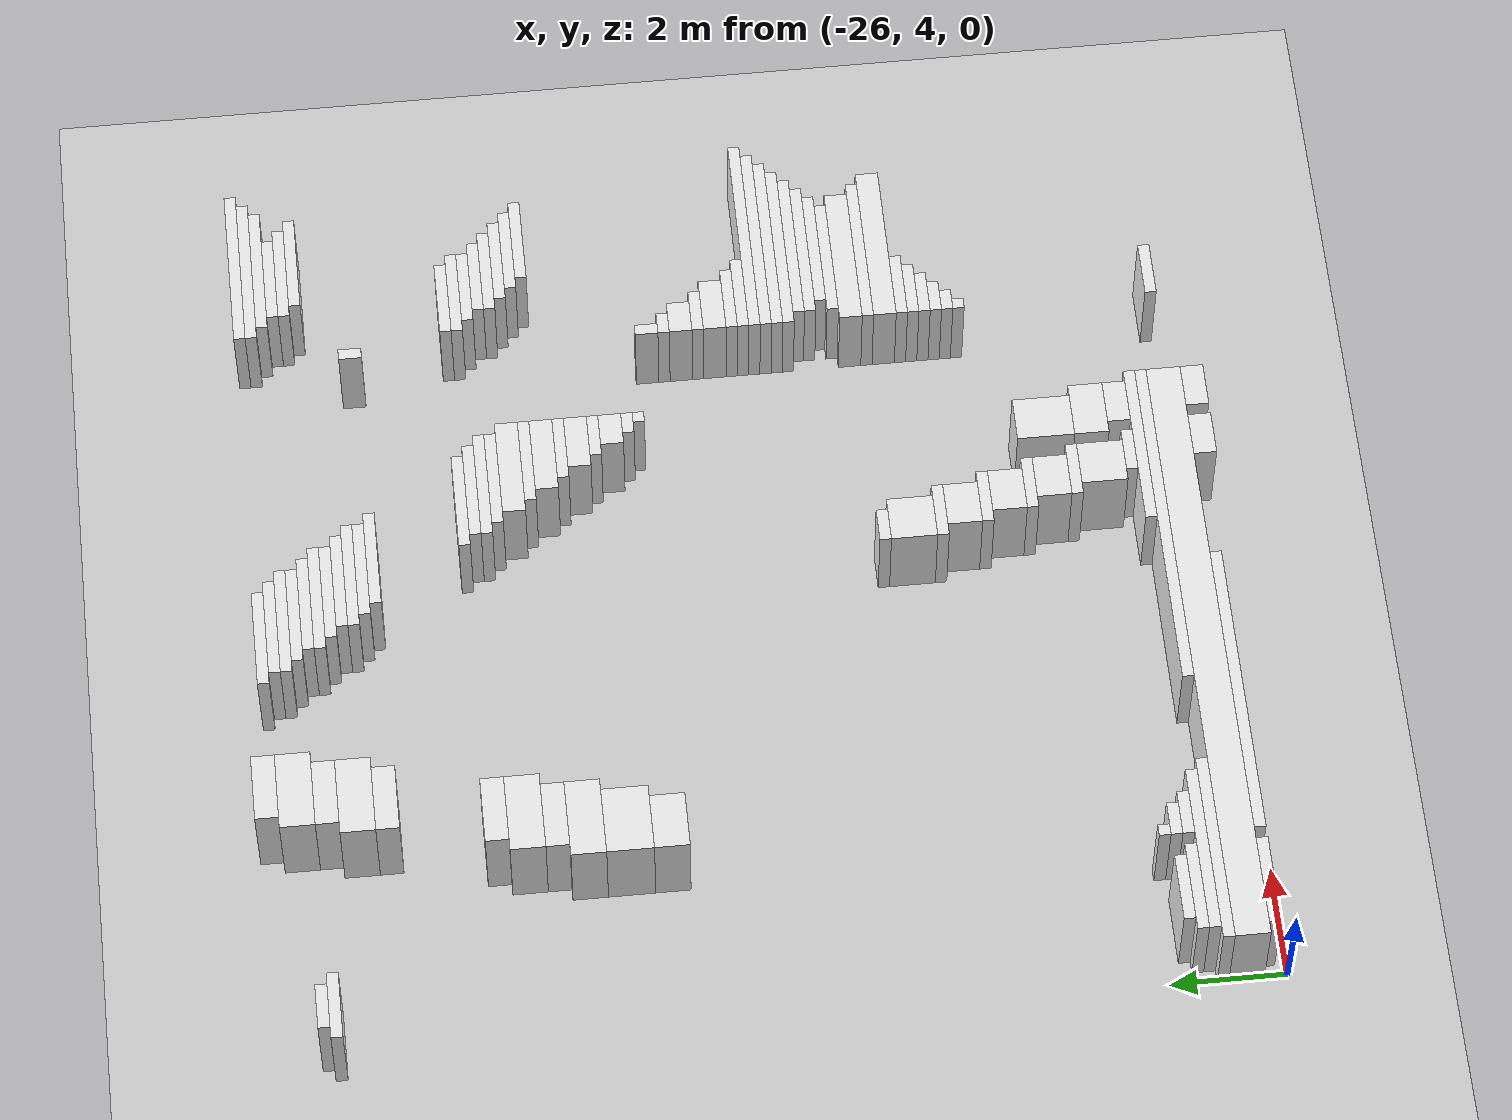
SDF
<sdf version="1.7">
 <world name="default">
  <model name="ground_plane">
   <static>1</static>
   <link name="link">
    <collision name="collision">
     <geometry><plane><normal>0 0 1</normal><size>120 120</size></plane></geometry>
    </collision>
    <visual name="visual">
     <geometry><plane><normal>0 0 1</normal><size>120 120</size></plane></geometry>
     <material>
      <script><uri>file://media/materials/scripts/gazebo.material</uri><name>Gazebo/Grey</name></script>
     </material>
    </visual>
   </link>
  </model>
  <model name="random_complex_02_model">
   <static>1</static>
   <link name="obs_1191">
    <pose>-21.6000 20.8000 0.8000 0 0 0</pose>
    <collision name="obs_1191_col"><geometry><box><size>1.2000 0.4000 1.6000</size></box></geometry></collision>
    <visual name="obs_1191_vis">
     <geometry><box><size>1.2000 0.4000 1.6000</size></box></geometry>
     <material>
      <script><uri>file://media/materials/scripts/gazebo.material</uri><name>Gazebo/White</name></script>
     </material>
    </visual>
   </link>
   <link name="obs_1195">
    <pose>-18.7000 20.7000 0.8000 0 0 0</pose>
    <collision name="obs_1195_col"><geometry><box><size>1.8000 0.2000 1.6000</size></box></geometry></collision>
    <visual name="obs_1195_vis">
     <geometry><box><size>1.8000 0.2000 1.6000</size></box></geometry>
     <material>
      <script><uri>file://media/materials/scripts/gazebo.material</uri><name>Gazebo/White</name></script>
     </material>
    </visual>
   </link>
   <link name="obs_1196">
    <pose>-11.1000 20.7000 0.8000 0 0 0</pose>
    <collision name="obs_1196_col"><geometry><box><size>3.0000 0.2000 1.6000</size></box></geometry></collision>
    <visual name="obs_1196_vis">
     <geometry><box><size>3.0000 0.2000 1.6000</size></box></geometry>
     <material>
      <script><uri>file://media/materials/scripts/gazebo.material</uri><name>Gazebo/White</name></script>
     </material>
    </visual>
   </link>
   <link name="obs_1203">
    <pose>-18.5000 20.5000 0.8000 0 0 0</pose>
    <collision name="obs_1203_col"><geometry><box><size>1.8000 0.2000 1.6000</size></box></geometry></collision>
    <visual name="obs_1203_vis">
     <geometry><box><size>1.8000 0.2000 1.6000</size></box></geometry>
     <material>
      <script><uri>file://media/materials/scripts/gazebo.material</uri><name>Gazebo/White</name></script>
     </material>
    </visual>
   </link>
   <link name="obs_1204">
    <pose>-11.2000 20.5000 0.8000 0 0 0</pose>
    <collision name="obs_1204_col"><geometry><box><size>2.8000 0.2000 1.6000</size></box></geometry></collision>
    <visual name="obs_1204_vis">
     <geometry><box><size>2.8000 0.2000 1.6000</size></box></geometry>
     <material>
      <script><uri>file://media/materials/scripts/gazebo.material</uri><name>Gazebo/White</name></script>
     </material>
    </visual>
   </link>
   <link name="obs_1214">
    <pose>-18.4000 20.3000 0.8000 0 0 0</pose>
    <collision name="obs_1214_col"><geometry><box><size>2.0000 0.2000 1.6000</size></box></geometry></collision>
    <visual name="obs_1214_vis">
     <geometry><box><size>2.0000 0.2000 1.6000</size></box></geometry>
     <material>
      <script><uri>file://media/materials/scripts/gazebo.material</uri><name>Gazebo/White</name></script>
     </material>
    </visual>
   </link>
   <link name="obs_1215">
    <pose>-11.2000 20.3000 0.8000 0 0 0</pose>
    <collision name="obs_1215_col"><geometry><box><size>2.4000 0.2000 1.6000</size></box></geometry></collision>
    <visual name="obs_1215_vis">
     <geometry><box><size>2.4000 0.2000 1.6000</size></box></geometry>
     <material>
      <script><uri>file://media/materials/scripts/gazebo.material</uri><name>Gazebo/White</name></script>
     </material>
    </visual>
   </link>
   <link name="obs_1218">
    <pose>-21.7000 20.3000 0.8000 0 0 0</pose>
    <collision name="obs_1218_col"><geometry><box><size>1.4000 0.6000 1.6000</size></box></geometry></collision>
    <visual name="obs_1218_vis">
     <geometry><box><size>1.4000 0.6000 1.6000</size></box></geometry>
     <material>
      <script><uri>file://media/materials/scripts/gazebo.material</uri><name>Gazebo/White</name></script>
     </material>
    </visual>
   </link>
   <link name="obs_1221">
    <pose>-25.8000 20.1000 0.8000 0 0 0</pose>
    <collision name="obs_1221_col"><geometry><box><size>0.8000 0.2000 1.6000</size></box></geometry></collision>
    <visual name="obs_1221_vis">
     <geometry><box><size>0.8000 0.2000 1.6000</size></box></geometry>
     <material>
      <script><uri>file://media/materials/scripts/gazebo.material</uri><name>Gazebo/White</name></script>
     </material>
    </visual>
   </link>
   <link name="obs_1222">
    <pose>-18.3000 20.1000 0.8000 0 0 0</pose>
    <collision name="obs_1222_col"><geometry><box><size>1.8000 0.2000 1.6000</size></box></geometry></collision>
    <visual name="obs_1222_vis">
     <geometry><box><size>1.8000 0.2000 1.6000</size></box></geometry>
     <material>
      <script><uri>file://media/materials/scripts/gazebo.material</uri><name>Gazebo/White</name></script>
     </material>
    </visual>
   </link>
   <link name="obs_1223">
    <pose>-11.4000 20.1000 0.8000 0 0 0</pose>
    <collision name="obs_1223_col"><geometry><box><size>1.6000 0.2000 1.6000</size></box></geometry></collision>
    <visual name="obs_1223_vis">
     <geometry><box><size>1.6000 0.2000 1.6000</size></box></geometry>
     <material>
      <script><uri>file://media/materials/scripts/gazebo.material</uri><name>Gazebo/White</name></script>
     </material>
    </visual>
   </link>
   <link name="obs_1228">
    <pose>-25.8000 19.9000 0.8000 0 0 0</pose>
    <collision name="obs_1228_col"><geometry><box><size>1.2000 0.2000 1.6000</size></box></geometry></collision>
    <visual name="obs_1228_vis">
     <geometry><box><size>1.2000 0.2000 1.6000</size></box></geometry>
     <material>
      <script><uri>file://media/materials/scripts/gazebo.material</uri><name>Gazebo/White</name></script>
     </material>
    </visual>
   </link>
   <link name="obs_1229">
    <pose>-18.1000 19.9000 0.8000 0 0 0</pose>
    <collision name="obs_1229_col"><geometry><box><size>1.8000 0.2000 1.6000</size></box></geometry></collision>
    <visual name="obs_1229_vis">
     <geometry><box><size>1.8000 0.2000 1.6000</size></box></geometry>
     <material>
      <script><uri>file://media/materials/scripts/gazebo.material</uri><name>Gazebo/White</name></script>
     </material>
    </visual>
   </link>
   <link name="obs_1230">
    <pose>-11.3000 19.9000 0.8000 0 0 0</pose>
    <collision name="obs_1230_col"><geometry><box><size>1.8000 0.2000 1.6000</size></box></geometry></collision>
    <visual name="obs_1230_vis">
     <geometry><box><size>1.8000 0.2000 1.6000</size></box></geometry>
     <material>
      <script><uri>file://media/materials/scripts/gazebo.material</uri><name>Gazebo/White</name></script>
     </material>
    </visual>
   </link>
   <link name="obs_1233">
    <pose>-21.8000 19.8000 0.8000 0 0 0</pose>
    <collision name="obs_1233_col"><geometry><box><size>1.2000 0.4000 1.6000</size></box></geometry></collision>
    <visual name="obs_1233_vis">
     <geometry><box><size>1.2000 0.4000 1.6000</size></box></geometry>
     <material>
      <script><uri>file://media/materials/scripts/gazebo.material</uri><name>Gazebo/White</name></script>
     </material>
    </visual>
   </link>
   <link name="obs_1234">
    <pose>-18.0000 19.7000 0.8000 0 0 0</pose>
    <collision name="obs_1234_col"><geometry><box><size>2.0000 0.2000 1.6000</size></box></geometry></collision>
    <visual name="obs_1234_vis">
     <geometry><box><size>2.0000 0.2000 1.6000</size></box></geometry>
     <material>
      <script><uri>file://media/materials/scripts/gazebo.material</uri><name>Gazebo/White</name></script>
     </material>
    </visual>
   </link>
   <link name="obs_1235">
    <pose>-11.1000 19.7000 0.8000 0 0 0</pose>
    <collision name="obs_1235_col"><geometry><box><size>1.8000 0.2000 1.6000</size></box></geometry></collision>
    <visual name="obs_1235_vis">
     <geometry><box><size>1.8000 0.2000 1.6000</size></box></geometry>
     <material>
      <script><uri>file://media/materials/scripts/gazebo.material</uri><name>Gazebo/White</name></script>
     </material>
    </visual>
   </link>
   <link name="obs_1239">
    <pose>-17.9000 19.5000 0.8000 0 0 0</pose>
    <collision name="obs_1239_col"><geometry><box><size>1.8000 0.2000 1.6000</size></box></geometry></collision>
    <visual name="obs_1239_vis">
     <geometry><box><size>1.8000 0.2000 1.6000</size></box></geometry>
     <material>
      <script><uri>file://media/materials/scripts/gazebo.material</uri><name>Gazebo/White</name></script>
     </material>
    </visual>
   </link>
   <link name="obs_1247">
    <pose>-17.7000 19.3000 0.8000 0 0 0</pose>
    <collision name="obs_1247_col"><geometry><box><size>1.8000 0.2000 1.6000</size></box></geometry></collision>
    <visual name="obs_1247_vis">
     <geometry><box><size>1.8000 0.2000 1.6000</size></box></geometry>
     <material>
      <script><uri>file://media/materials/scripts/gazebo.material</uri><name>Gazebo/White</name></script>
     </material>
    </visual>
   </link>
   <link name="obs_1252">
    <pose>-21.9000 19.3000 0.8000 0 0 0</pose>
    <collision name="obs_1252_col"><geometry><box><size>1.4000 0.6000 1.6000</size></box></geometry></collision>
    <visual name="obs_1252_vis">
     <geometry><box><size>1.4000 0.6000 1.6000</size></box></geometry>
     <material>
      <script><uri>file://media/materials/scripts/gazebo.material</uri><name>Gazebo/White</name></script>
     </material>
    </visual>
   </link>
   <link name="obs_1256">
    <pose>-17.6000 19.1000 0.8000 0 0 0</pose>
    <collision name="obs_1256_col"><geometry><box><size>2.0000 0.2000 1.6000</size></box></geometry></collision>
    <visual name="obs_1256_vis">
     <geometry><box><size>2.0000 0.2000 1.6000</size></box></geometry>
     <material>
      <script><uri>file://media/materials/scripts/gazebo.material</uri><name>Gazebo/White</name></script>
     </material>
    </visual>
   </link>
   <link name="obs_1265">
    <pose>-17.5000 18.9000 0.8000 0 0 0</pose>
    <collision name="obs_1265_col"><geometry><box><size>1.8000 0.2000 1.6000</size></box></geometry></collision>
    <visual name="obs_1265_vis">
     <geometry><box><size>1.8000 0.2000 1.6000</size></box></geometry>
     <material>
      <script><uri>file://media/materials/scripts/gazebo.material</uri><name>Gazebo/White</name></script>
     </material>
    </visual>
   </link>
   <link name="obs_1272">
    <pose>-22.0000 18.8000 0.8000 0 0 0</pose>
    <collision name="obs_1272_col"><geometry><box><size>1.2000 0.4000 1.6000</size></box></geometry></collision>
    <visual name="obs_1272_vis">
     <geometry><box><size>1.2000 0.4000 1.6000</size></box></geometry>
     <material>
      <script><uri>file://media/materials/scripts/gazebo.material</uri><name>Gazebo/White</name></script>
     </material>
    </visual>
   </link>
   <link name="obs_1273">
    <pose>-13.1000 18.8000 0.8000 0 0 0</pose>
    <collision name="obs_1273_col"><geometry><box><size>0.2000 0.4000 1.6000</size></box></geometry></collision>
    <visual name="obs_1273_vis">
     <geometry><box><size>0.2000 0.4000 1.6000</size></box></geometry>
     <material>
      <script><uri>file://media/materials/scripts/gazebo.material</uri><name>Gazebo/White</name></script>
     </material>
    </visual>
   </link>
   <link name="obs_1280">
    <pose>-17.3000 18.7000 0.8000 0 0 0</pose>
    <collision name="obs_1280_col"><geometry><box><size>1.8000 0.2000 1.6000</size></box></geometry></collision>
    <visual name="obs_1280_vis">
     <geometry><box><size>1.8000 0.2000 1.6000</size></box></geometry>
     <material>
      <script><uri>file://media/materials/scripts/gazebo.material</uri><name>Gazebo/White</name></script>
     </material>
    </visual>
   </link>
   <link name="obs_1312">
    <pose>-16.3000 17.1000 0.8000 0 0 0</pose>
    <collision name="obs_1312_col"><geometry><box><size>1.8000 0.2000 1.6000</size></box></geometry></collision>
    <visual name="obs_1312_vis">
     <geometry><box><size>1.8000 0.2000 1.6000</size></box></geometry>
     <material>
      <script><uri>file://media/materials/scripts/gazebo.material</uri><name>Gazebo/White</name></script>
     </material>
    </visual>
   </link>
   <link name="obs_1313">
    <pose>-12.1000 17.1000 0.8000 0 0 0</pose>
    <collision name="obs_1313_col"><geometry><box><size>1.4000 0.2000 1.6000</size></box></geometry></collision>
    <visual name="obs_1313_vis">
     <geometry><box><size>1.4000 0.2000 1.6000</size></box></geometry>
     <material>
      <script><uri>file://media/materials/scripts/gazebo.material</uri><name>Gazebo/White</name></script>
     </material>
    </visual>
   </link>
   <link name="obs_1318">
    <pose>-22.4000 17.0000 0.8000 0 0 0</pose>
    <collision name="obs_1318_col"><geometry><box><size>1.2000 0.4000 1.6000</size></box></geometry></collision>
    <visual name="obs_1318_vis">
     <geometry><box><size>1.2000 0.4000 1.6000</size></box></geometry>
     <material>
      <script><uri>file://media/materials/scripts/gazebo.material</uri><name>Gazebo/White</name></script>
     </material>
    </visual>
   </link>
   <link name="obs_1320">
    <pose>-16.1000 16.9000 0.8000 0 0 0</pose>
    <collision name="obs_1320_col"><geometry><box><size>1.8000 0.2000 1.6000</size></box></geometry></collision>
    <visual name="obs_1320_vis">
     <geometry><box><size>1.8000 0.2000 1.6000</size></box></geometry>
     <material>
      <script><uri>file://media/materials/scripts/gazebo.material</uri><name>Gazebo/White</name></script>
     </material>
    </visual>
   </link>
   <link name="obs_1321">
    <pose>-12.0000 16.9000 0.8000 0 0 0</pose>
    <collision name="obs_1321_col"><geometry><box><size>1.6000 0.2000 1.6000</size></box></geometry></collision>
    <visual name="obs_1321_vis">
     <geometry><box><size>1.6000 0.2000 1.6000</size></box></geometry>
     <material>
      <script><uri>file://media/materials/scripts/gazebo.material</uri><name>Gazebo/White</name></script>
     </material>
    </visual>
   </link>
   <link name="obs_1327">
    <pose>-16.0000 16.7000 0.8000 0 0 0</pose>
    <collision name="obs_1327_col"><geometry><box><size>2.0000 0.2000 1.6000</size></box></geometry></collision>
    <visual name="obs_1327_vis">
     <geometry><box><size>2.0000 0.2000 1.6000</size></box></geometry>
     <material>
      <script><uri>file://media/materials/scripts/gazebo.material</uri><name>Gazebo/White</name></script>
     </material>
    </visual>
   </link>
   <link name="obs_1328">
    <pose>-11.9000 16.7000 0.8000 0 0 0</pose>
    <collision name="obs_1328_col"><geometry><box><size>1.4000 0.2000 1.6000</size></box></geometry></collision>
    <visual name="obs_1328_vis">
     <geometry><box><size>1.4000 0.2000 1.6000</size></box></geometry>
     <material>
      <script><uri>file://media/materials/scripts/gazebo.material</uri><name>Gazebo/White</name></script>
     </material>
    </visual>
   </link>
   <link name="obs_1334">
    <pose>-15.9000 16.5000 0.8000 0 0 0</pose>
    <collision name="obs_1334_col"><geometry><box><size>1.8000 0.2000 1.6000</size></box></geometry></collision>
    <visual name="obs_1334_vis">
     <geometry><box><size>1.8000 0.2000 1.6000</size></box></geometry>
     <material>
      <script><uri>file://media/materials/scripts/gazebo.material</uri><name>Gazebo/White</name></script>
     </material>
    </visual>
   </link>
   <link name="obs_1335">
    <pose>-11.7000 16.5000 0.8000 0 0 0</pose>
    <collision name="obs_1335_col"><geometry><box><size>1.4000 0.2000 1.6000</size></box></geometry></collision>
    <visual name="obs_1335_vis">
     <geometry><box><size>1.4000 0.2000 1.6000</size></box></geometry>
     <material>
      <script><uri>file://media/materials/scripts/gazebo.material</uri><name>Gazebo/White</name></script>
     </material>
    </visual>
   </link>
   <link name="obs_1338">
    <pose>-22.5000 16.5000 0.8000 0 0 0</pose>
    <collision name="obs_1338_col"><geometry><box><size>1.4000 0.6000 1.6000</size></box></geometry></collision>
    <visual name="obs_1338_vis">
     <geometry><box><size>1.4000 0.6000 1.6000</size></box></geometry>
     <material>
      <script><uri>file://media/materials/scripts/gazebo.material</uri><name>Gazebo/White</name></script>
     </material>
    </visual>
   </link>
   <link name="obs_1341">
    <pose>-11.6000 16.3000 0.8000 0 0 0</pose>
    <collision name="obs_1341_col"><geometry><box><size>1.6000 0.2000 1.6000</size></box></geometry></collision>
    <visual name="obs_1341_vis">
     <geometry><box><size>1.6000 0.2000 1.6000</size></box></geometry>
     <material>
      <script><uri>file://media/materials/scripts/gazebo.material</uri><name>Gazebo/White</name></script>
     </material>
    </visual>
   </link>
   <link name="obs_1345">
    <pose>-15.7000 16.2000 0.8000 0 0 0</pose>
    <collision name="obs_1345_col"><geometry><box><size>1.8000 0.4000 1.6000</size></box></geometry></collision>
    <visual name="obs_1345_vis">
     <geometry><box><size>1.8000 0.4000 1.6000</size></box></geometry>
     <material>
      <script><uri>file://media/materials/scripts/gazebo.material</uri><name>Gazebo/White</name></script>
     </material>
    </visual>
   </link>
   <link name="obs_1348">
    <pose>-11.4000 16.1000 0.8000 0 0 0</pose>
    <collision name="obs_1348_col"><geometry><box><size>1.6000 0.2000 1.6000</size></box></geometry></collision>
    <visual name="obs_1348_vis">
     <geometry><box><size>1.6000 0.2000 1.6000</size></box></geometry>
     <material>
      <script><uri>file://media/materials/scripts/gazebo.material</uri><name>Gazebo/White</name></script>
     </material>
    </visual>
   </link>
   <link name="obs_1350">
    <pose>-22.6000 16.0000 0.8000 0 0 0</pose>
    <collision name="obs_1350_col"><geometry><box><size>1.2000 0.4000 1.6000</size></box></geometry></collision>
    <visual name="obs_1350_vis">
     <geometry><box><size>1.2000 0.4000 1.6000</size></box></geometry>
     <material>
      <script><uri>file://media/materials/scripts/gazebo.material</uri><name>Gazebo/White</name></script>
     </material>
    </visual>
   </link>
   <link name="obs_1353">
    <pose>-15.6000 15.9000 0.8000 0 0 0</pose>
    <collision name="obs_1353_col"><geometry><box><size>1.6000 0.2000 1.6000</size></box></geometry></collision>
    <visual name="obs_1353_vis">
     <geometry><box><size>1.6000 0.2000 1.6000</size></box></geometry>
     <material>
      <script><uri>file://media/materials/scripts/gazebo.material</uri><name>Gazebo/White</name></script>
     </material>
    </visual>
   </link>
   <link name="obs_1354">
    <pose>-11.2000 15.9000 0.8000 0 0 0</pose>
    <collision name="obs_1354_col"><geometry><box><size>1.6000 0.2000 1.6000</size></box></geometry></collision>
    <visual name="obs_1354_vis">
     <geometry><box><size>1.6000 0.2000 1.6000</size></box></geometry>
     <material>
      <script><uri>file://media/materials/scripts/gazebo.material</uri><name>Gazebo/White</name></script>
     </material>
    </visual>
   </link>
   <link name="obs_1359">
    <pose>-11.0000 15.7000 0.8000 0 0 0</pose>
    <collision name="obs_1359_col"><geometry><box><size>1.6000 0.2000 1.6000</size></box></geometry></collision>
    <visual name="obs_1359_vis">
     <geometry><box><size>1.6000 0.2000 1.6000</size></box></geometry>
     <material>
      <script><uri>file://media/materials/scripts/gazebo.material</uri><name>Gazebo/White</name></script>
     </material>
    </visual>
   </link>
   <link name="obs_1362">
    <pose>-15.5000 15.6000 0.8000 0 0 0</pose>
    <collision name="obs_1362_col"><geometry><box><size>1.4000 0.4000 1.6000</size></box></geometry></collision>
    <visual name="obs_1362_vis">
     <geometry><box><size>1.4000 0.4000 1.6000</size></box></geometry>
     <material>
      <script><uri>file://media/materials/scripts/gazebo.material</uri><name>Gazebo/White</name></script>
     </material>
    </visual>
   </link>
   <link name="obs_1367">
    <pose>-22.7000 15.5000 0.8000 0 0 0</pose>
    <collision name="obs_1367_col"><geometry><box><size>1.4000 0.6000 1.6000</size></box></geometry></collision>
    <visual name="obs_1367_vis">
     <geometry><box><size>1.4000 0.6000 1.6000</size></box></geometry>
     <material>
      <script><uri>file://media/materials/scripts/gazebo.material</uri><name>Gazebo/White</name></script>
     </material>
    </visual>
   </link>
   <link name="obs_1371">
    <pose>-15.4000 15.3000 0.8000 0 0 0</pose>
    <collision name="obs_1371_col"><geometry><box><size>1.2000 0.2000 1.6000</size></box></geometry></collision>
    <visual name="obs_1371_vis">
     <geometry><box><size>1.2000 0.2000 1.6000</size></box></geometry>
     <material>
      <script><uri>file://media/materials/scripts/gazebo.material</uri><name>Gazebo/White</name></script>
     </material>
    </visual>
   </link>
   <link name="obs_1381">
    <pose>-15.3000 15.0000 0.8000 0 0 0</pose>
    <collision name="obs_1381_col"><geometry><box><size>1.0000 0.4000 1.6000</size></box></geometry></collision>
    <visual name="obs_1381_vis">
     <geometry><box><size>1.0000 0.4000 1.6000</size></box></geometry>
     <material>
      <script><uri>file://media/materials/scripts/gazebo.material</uri><name>Gazebo/White</name></script>
     </material>
    </visual>
   </link>
   <link name="obs_1389">
    <pose>-15.2000 14.7000 0.8000 0 0 0</pose>
    <collision name="obs_1389_col"><geometry><box><size>0.8000 0.2000 1.6000</size></box></geometry></collision>
    <visual name="obs_1389_vis">
     <geometry><box><size>0.8000 0.2000 1.6000</size></box></geometry>
     <material>
      <script><uri>file://media/materials/scripts/gazebo.material</uri><name>Gazebo/White</name></script>
     </material>
    </visual>
   </link>
   <link name="obs_1393">
    <pose>-22.8000 14.8000 0.8000 0 0 0</pose>
    <collision name="obs_1393_col"><geometry><box><size>1.2000 0.8000 1.6000</size></box></geometry></collision>
    <visual name="obs_1393_vis">
     <geometry><box><size>1.2000 0.8000 1.6000</size></box></geometry>
     <material>
      <script><uri>file://media/materials/scripts/gazebo.material</uri><name>Gazebo/White</name></script>
     </material>
    </visual>
   </link>
   <link name="obs_1401">
    <pose>-15.1000 14.4000 0.8000 0 0 0</pose>
    <collision name="obs_1401_col"><geometry><box><size>0.6000 0.4000 1.6000</size></box></geometry></collision>
    <visual name="obs_1401_vis">
     <geometry><box><size>0.6000 0.4000 1.6000</size></box></geometry>
     <material>
      <script><uri>file://media/materials/scripts/gazebo.material</uri><name>Gazebo/White</name></script>
     </material>
    </visual>
   </link>
   <link name="obs_1409">
    <pose>-15.0000 14.1000 0.8000 0 0 0</pose>
    <collision name="obs_1409_col"><geometry><box><size>0.4000 0.2000 1.6000</size></box></geometry></collision>
    <visual name="obs_1409_vis">
     <geometry><box><size>0.4000 0.2000 1.6000</size></box></geometry>
     <material>
      <script><uri>file://media/materials/scripts/gazebo.material</uri><name>Gazebo/White</name></script>
     </material>
    </visual>
   </link>
   <link name="obs_1413">
    <pose>-22.9000 14.1000 0.8000 0 0 0</pose>
    <collision name="obs_1413_col"><geometry><box><size>1.0000 0.6000 1.6000</size></box></geometry></collision>
    <visual name="obs_1413_vis">
     <geometry><box><size>1.0000 0.6000 1.6000</size></box></geometry>
     <material>
      <script><uri>file://media/materials/scripts/gazebo.material</uri><name>Gazebo/White</name></script>
     </material>
    </visual>
   </link>
   <link name="obs_1418">
    <pose>-14.9000 13.9000 0.8000 0 0 0</pose>
    <collision name="obs_1418_col"><geometry><box><size>0.2000 0.2000 1.6000</size></box></geometry></collision>
    <visual name="obs_1418_vis">
     <geometry><box><size>0.2000 0.2000 1.6000</size></box></geometry>
     <material>
      <script><uri>file://media/materials/scripts/gazebo.material</uri><name>Gazebo/White</name></script>
     </material>
    </visual>
   </link>
   <link name="obs_1428">
    <pose>-13.1000 13.6000 0.8000 0 0 0</pose>
    <collision name="obs_1428_col"><geometry><box><size>0.2000 0.4000 1.6000</size></box></geometry></collision>
    <visual name="obs_1428_vis">
     <geometry><box><size>0.2000 0.4000 1.6000</size></box></geometry>
     <material>
      <script><uri>file://media/materials/scripts/gazebo.material</uri><name>Gazebo/White</name></script>
     </material>
    </visual>
   </link>
   <link name="obs_1436">
    <pose>-13.0000 13.3000 0.8000 0 0 0</pose>
    <collision name="obs_1436_col"><geometry><box><size>0.4000 0.2000 1.6000</size></box></geometry></collision>
    <visual name="obs_1436_vis">
     <geometry><box><size>0.4000 0.2000 1.6000</size></box></geometry>
     <material>
      <script><uri>file://media/materials/scripts/gazebo.material</uri><name>Gazebo/White</name></script>
     </material>
    </visual>
   </link>
   <link name="obs_1444">
    <pose>-12.9000 13.0000 0.8000 0 0 0</pose>
    <collision name="obs_1444_col"><geometry><box><size>0.6000 0.4000 1.6000</size></box></geometry></collision>
    <visual name="obs_1444_vis">
     <geometry><box><size>0.6000 0.4000 1.6000</size></box></geometry>
     <material>
      <script><uri>file://media/materials/scripts/gazebo.material</uri><name>Gazebo/White</name></script>
     </material>
    </visual>
   </link>
   <link name="obs_1449">
    <pose>-12.8000 12.7000 0.8000 0 0 0</pose>
    <collision name="obs_1449_col"><geometry><box><size>0.8000 0.2000 1.6000</size></box></geometry></collision>
    <visual name="obs_1449_vis">
     <geometry><box><size>0.8000 0.2000 1.6000</size></box></geometry>
     <material>
      <script><uri>file://media/materials/scripts/gazebo.material</uri><name>Gazebo/White</name></script>
     </material>
    </visual>
   </link>
   <link name="obs_1459">
    <pose>-12.7000 12.4000 0.8000 0 0 0</pose>
    <collision name="obs_1459_col"><geometry><box><size>1.0000 0.4000 1.6000</size></box></geometry></collision>
    <visual name="obs_1459_vis">
     <geometry><box><size>1.0000 0.4000 1.6000</size></box></geometry>
     <material>
      <script><uri>file://media/materials/scripts/gazebo.material</uri><name>Gazebo/White</name></script>
     </material>
    </visual>
   </link>
   <link name="obs_1469">
    <pose>-12.6000 12.1000 0.8000 0 0 0</pose>
    <collision name="obs_1469_col"><geometry><box><size>1.2000 0.2000 1.6000</size></box></geometry></collision>
    <visual name="obs_1469_vis">
     <geometry><box><size>1.2000 0.2000 1.6000</size></box></geometry>
     <material>
      <script><uri>file://media/materials/scripts/gazebo.material</uri><name>Gazebo/White</name></script>
     </material>
    </visual>
   </link>
   <link name="obs_1479">
    <pose>-12.5000 11.9000 0.8000 0 0 0</pose>
    <collision name="obs_1479_col"><geometry><box><size>1.4000 0.2000 1.6000</size></box></geometry></collision>
    <visual name="obs_1479_vis">
     <geometry><box><size>1.4000 0.2000 1.6000</size></box></geometry>
     <material>
      <script><uri>file://media/materials/scripts/gazebo.material</uri><name>Gazebo/White</name></script>
     </material>
    </visual>
   </link>
   <link name="obs_1487">
    <pose>-11.3000 11.7000 0.8000 0 0 0</pose>
    <collision name="obs_1487_col"><geometry><box><size>3.8000 0.2000 1.6000</size></box></geometry></collision>
    <visual name="obs_1487_vis">
     <geometry><box><size>3.8000 0.2000 1.6000</size></box></geometry>
     <material>
      <script><uri>file://media/materials/scripts/gazebo.material</uri><name>Gazebo/White</name></script>
     </material>
    </visual>
   </link>
   <link name="obs_1494">
    <pose>-11.4000 11.5000 0.8000 0 0 0</pose>
    <collision name="obs_1494_col"><geometry><box><size>3.6000 0.2000 1.6000</size></box></geometry></collision>
    <visual name="obs_1494_vis">
     <geometry><box><size>3.6000 0.2000 1.6000</size></box></geometry>
     <material>
      <script><uri>file://media/materials/scripts/gazebo.material</uri><name>Gazebo/White</name></script>
     </material>
    </visual>
   </link>
   <link name="obs_1497">
    <pose>-11.5000 11.3000 0.8000 0 0 0</pose>
    <collision name="obs_1497_col"><geometry><box><size>3.4000 0.2000 1.6000</size></box></geometry></collision>
    <visual name="obs_1497_vis">
     <geometry><box><size>3.4000 0.2000 1.6000</size></box></geometry>
     <material>
      <script><uri>file://media/materials/scripts/gazebo.material</uri><name>Gazebo/White</name></script>
     </material>
    </visual>
   </link>
   <link name="obs_1504">
    <pose>-11.6000 11.1000 0.8000 0 0 0</pose>
    <collision name="obs_1504_col"><geometry><box><size>3.2000 0.2000 1.6000</size></box></geometry></collision>
    <visual name="obs_1504_vis">
     <geometry><box><size>3.2000 0.2000 1.6000</size></box></geometry>
     <material>
      <script><uri>file://media/materials/scripts/gazebo.material</uri><name>Gazebo/White</name></script>
     </material>
    </visual>
   </link>
   <link name="obs_1508">
    <pose>-11.6000 10.9000 0.8000 0 0 0</pose>
    <collision name="obs_1508_col"><geometry><box><size>2.8000 0.2000 1.6000</size></box></geometry></collision>
    <visual name="obs_1508_vis">
     <geometry><box><size>2.8000 0.2000 1.6000</size></box></geometry>
     <material>
      <script><uri>file://media/materials/scripts/gazebo.material</uri><name>Gazebo/White</name></script>
     </material>
    </visual>
   </link>
   <link name="obs_1512">
    <pose>-11.7000 10.7000 0.8000 0 0 0</pose>
    <collision name="obs_1512_col"><geometry><box><size>2.6000 0.2000 1.6000</size></box></geometry></collision>
    <visual name="obs_1512_vis">
     <geometry><box><size>2.6000 0.2000 1.6000</size></box></geometry>
     <material>
      <script><uri>file://media/materials/scripts/gazebo.material</uri><name>Gazebo/White</name></script>
     </material>
    </visual>
   </link>
   <link name="obs_1518">
    <pose>-11.7000 10.5000 0.8000 0 0 0</pose>
    <collision name="obs_1518_col"><geometry><box><size>2.2000 0.2000 1.6000</size></box></geometry></collision>
    <visual name="obs_1518_vis">
     <geometry><box><size>2.2000 0.2000 1.6000</size></box></geometry>
     <material>
      <script><uri>file://media/materials/scripts/gazebo.material</uri><name>Gazebo/White</name></script>
     </material>
    </visual>
   </link>
   <link name="obs_1526">
    <pose>-11.9000 10.3000 0.8000 0 0 0</pose>
    <collision name="obs_1526_col"><geometry><box><size>2.2000 0.2000 1.6000</size></box></geometry></collision>
    <visual name="obs_1526_vis">
     <geometry><box><size>2.2000 0.2000 1.6000</size></box></geometry>
     <material>
      <script><uri>file://media/materials/scripts/gazebo.material</uri><name>Gazebo/White</name></script>
     </material>
    </visual>
   </link>
   <link name="obs_1540">
    <pose>-11.9000 10.0000 0.8000 0 0 0</pose>
    <collision name="obs_1540_col"><geometry><box><size>2.6000 0.4000 1.6000</size></box></geometry></collision>
    <visual name="obs_1540_vis">
     <geometry><box><size>2.6000 0.4000 1.6000</size></box></geometry>
     <material>
      <script><uri>file://media/materials/scripts/gazebo.material</uri><name>Gazebo/White</name></script>
     </material>
    </visual>
   </link>
   <link name="obs_1542">
    <pose>-17.5000 9.9000 0.8000 0 0 0</pose>
    <collision name="obs_1542_col"><geometry><box><size>0.6000 0.2000 1.6000</size></box></geometry></collision>
    <visual name="obs_1542_vis">
     <geometry><box><size>0.6000 0.2000 1.6000</size></box></geometry>
     <material>
      <script><uri>file://media/materials/scripts/gazebo.material</uri><name>Gazebo/White</name></script>
     </material>
    </visual>
   </link>
   <link name="obs_1552">
    <pose>-11.8000 9.7000 0.8000 0 0 0</pose>
    <collision name="obs_1552_col"><geometry><box><size>2.8000 0.2000 1.6000</size></box></geometry></collision>
    <visual name="obs_1552_vis">
     <geometry><box><size>2.8000 0.2000 1.6000</size></box></geometry>
     <material>
      <script><uri>file://media/materials/scripts/gazebo.material</uri><name>Gazebo/White</name></script>
     </material>
    </visual>
   </link>
   <link name="obs_1567">
    <pose>-11.7000 9.4000 0.8000 0 0 0</pose>
    <collision name="obs_1567_col"><geometry><box><size>3.0000 0.4000 1.6000</size></box></geometry></collision>
    <visual name="obs_1567_vis">
     <geometry><box><size>3.0000 0.4000 1.6000</size></box></geometry>
     <material>
      <script><uri>file://media/materials/scripts/gazebo.material</uri><name>Gazebo/White</name></script>
     </material>
    </visual>
   </link>
   <link name="obs_1574">
    <pose>-17.4000 9.4000 0.8000 0 0 0</pose>
    <collision name="obs_1574_col"><geometry><box><size>0.8000 0.8000 1.6000</size></box></geometry></collision>
    <visual name="obs_1574_vis">
     <geometry><box><size>0.8000 0.8000 1.6000</size></box></geometry>
     <material>
      <script><uri>file://media/materials/scripts/gazebo.material</uri><name>Gazebo/White</name></script>
     </material>
    </visual>
   </link>
   <link name="obs_1579">
    <pose>-12.6000 9.1000 0.8000 0 0 0</pose>
    <collision name="obs_1579_col"><geometry><box><size>1.2000 0.2000 1.6000</size></box></geometry></collision>
    <visual name="obs_1579_vis">
     <geometry><box><size>1.2000 0.2000 1.6000</size></box></geometry>
     <material>
      <script><uri>file://media/materials/scripts/gazebo.material</uri><name>Gazebo/White</name></script>
     </material>
    </visual>
   </link>
   <link name="obs_1588">
    <pose>-17.3000 8.9000 0.8000 0 0 0</pose>
    <collision name="obs_1588_col"><geometry><box><size>1.0000 0.2000 1.6000</size></box></geometry></collision>
    <visual name="obs_1588_vis">
     <geometry><box><size>1.0000 0.2000 1.6000</size></box></geometry>
     <material>
      <script><uri>file://media/materials/scripts/gazebo.material</uri><name>Gazebo/White</name></script>
     </material>
    </visual>
   </link>
   <link name="obs_1589">
    <pose>-12.7000 8.9000 0.8000 0 0 0</pose>
    <collision name="obs_1589_col"><geometry><box><size>1.0000 0.2000 1.6000</size></box></geometry></collision>
    <visual name="obs_1589_vis">
     <geometry><box><size>1.0000 0.2000 1.6000</size></box></geometry>
     <material>
      <script><uri>file://media/materials/scripts/gazebo.material</uri><name>Gazebo/White</name></script>
     </material>
    </visual>
   </link>
   <link name="obs_1599">
    <pose>-12.8000 8.7000 0.8000 0 0 0</pose>
    <collision name="obs_1599_col"><geometry><box><size>0.8000 0.2000 1.6000</size></box></geometry></collision>
    <visual name="obs_1599_vis">
     <geometry><box><size>0.8000 0.2000 1.6000</size></box></geometry>
     <material>
      <script><uri>file://media/materials/scripts/gazebo.material</uri><name>Gazebo/White</name></script>
     </material>
    </visual>
   </link>
   <link name="obs_1609">
    <pose>-12.9000 8.5000 0.8000 0 0 0</pose>
    <collision name="obs_1609_col"><geometry><box><size>0.6000 0.2000 1.6000</size></box></geometry></collision>
    <visual name="obs_1609_vis">
     <geometry><box><size>0.6000 0.2000 1.6000</size></box></geometry>
     <material>
      <script><uri>file://media/materials/scripts/gazebo.material</uri><name>Gazebo/White</name></script>
     </material>
    </visual>
   </link>
   <link name="obs_1612">
    <pose>-17.2000 8.5000 0.8000 0 0 0</pose>
    <collision name="obs_1612_col"><geometry><box><size>0.8000 0.6000 1.6000</size></box></geometry></collision>
    <visual name="obs_1612_vis">
     <geometry><box><size>0.8000 0.6000 1.6000</size></box></geometry>
     <material>
      <script><uri>file://media/materials/scripts/gazebo.material</uri><name>Gazebo/White</name></script>
     </material>
    </visual>
   </link>
   <link name="obs_1615">
    <pose>-13.0000 8.3000 0.8000 0 0 0</pose>
    <collision name="obs_1615_col"><geometry><box><size>0.4000 0.2000 1.6000</size></box></geometry></collision>
    <visual name="obs_1615_vis">
     <geometry><box><size>0.4000 0.2000 1.6000</size></box></geometry>
     <material>
      <script><uri>file://media/materials/scripts/gazebo.material</uri><name>Gazebo/White</name></script>
     </material>
    </visual>
   </link>
   <link name="obs_1624">
    <pose>-17.1000 8.1000 0.8000 0 0 0</pose>
    <collision name="obs_1624_col"><geometry><box><size>1.0000 0.2000 1.6000</size></box></geometry></collision>
    <visual name="obs_1624_vis">
     <geometry><box><size>1.0000 0.2000 1.6000</size></box></geometry>
     <material>
      <script><uri>file://media/materials/scripts/gazebo.material</uri><name>Gazebo/White</name></script>
     </material>
    </visual>
   </link>
   <link name="obs_1625">
    <pose>-13.1000 8.1000 0.8000 0 0 0</pose>
    <collision name="obs_1625_col"><geometry><box><size>0.2000 0.2000 1.6000</size></box></geometry></collision>
    <visual name="obs_1625_vis">
     <geometry><box><size>0.2000 0.2000 1.6000</size></box></geometry>
     <material>
      <script><uri>file://media/materials/scripts/gazebo.material</uri><name>Gazebo/White</name></script>
     </material>
    </visual>
   </link>
   <link name="obs_1645">
    <pose>-17.0000 7.7000 0.8000 0 0 0</pose>
    <collision name="obs_1645_col"><geometry><box><size>0.8000 0.6000 1.6000</size></box></geometry></collision>
    <visual name="obs_1645_vis">
     <geometry><box><size>0.8000 0.6000 1.6000</size></box></geometry>
     <material>
      <script><uri>file://media/materials/scripts/gazebo.material</uri><name>Gazebo/White</name></script>
     </material>
    </visual>
   </link>
   <link name="obs_1652">
    <pose>-16.9000 7.3000 0.8000 0 0 0</pose>
    <collision name="obs_1652_col"><geometry><box><size>1.0000 0.2000 1.6000</size></box></geometry></collision>
    <visual name="obs_1652_vis">
     <geometry><box><size>1.0000 0.2000 1.6000</size></box></geometry>
     <material>
      <script><uri>file://media/materials/scripts/gazebo.material</uri><name>Gazebo/White</name></script>
     </material>
    </visual>
   </link>
   <link name="obs_1667">
    <pose>-16.8000 6.9000 0.8000 0 0 0</pose>
    <collision name="obs_1667_col"><geometry><box><size>0.8000 0.6000 1.6000</size></box></geometry></collision>
    <visual name="obs_1667_vis">
     <geometry><box><size>0.8000 0.6000 1.6000</size></box></geometry>
     <material>
      <script><uri>file://media/materials/scripts/gazebo.material</uri><name>Gazebo/White</name></script>
     </material>
    </visual>
   </link>
   <link name="obs_1675">
    <pose>-15.6000 6.9000 0.8000 0 0 0</pose>
    <collision name="obs_1675_col"><geometry><box><size>0.8000 1.0000 1.6000</size></box></geometry></collision>
    <visual name="obs_1675_vis">
     <geometry><box><size>0.8000 1.0000 1.6000</size></box></geometry>
     <material>
      <script><uri>file://media/materials/scripts/gazebo.material</uri><name>Gazebo/White</name></script>
     </material>
    </visual>
   </link>
   <link name="obs_1681">
    <pose>-16.7000 6.5000 0.8000 0 0 0</pose>
    <collision name="obs_1681_col"><geometry><box><size>1.0000 0.2000 1.6000</size></box></geometry></collision>
    <visual name="obs_1681_vis">
     <geometry><box><size>1.0000 0.2000 1.6000</size></box></geometry>
     <material>
      <script><uri>file://media/materials/scripts/gazebo.material</uri><name>Gazebo/White</name></script>
     </material>
    </visual>
   </link>
   <link name="obs_1697">
    <pose>-15.5000 6.1000 0.8000 0 0 0</pose>
    <collision name="obs_1697_col"><geometry><box><size>1.0000 0.6000 1.6000</size></box></geometry></collision>
    <visual name="obs_1697_vis">
     <geometry><box><size>1.0000 0.6000 1.6000</size></box></geometry>
     <material>
      <script><uri>file://media/materials/scripts/gazebo.material</uri><name>Gazebo/White</name></script>
     </material>
    </visual>
   </link>
   <link name="obs_1701">
    <pose>-23.9000 5.9000 0.8000 0 0 0</pose>
    <collision name="obs_1701_col"><geometry><box><size>0.2000 0.2000 1.6000</size></box></geometry></collision>
    <visual name="obs_1701_vis">
     <geometry><box><size>0.2000 0.2000 1.6000</size></box></geometry>
     <material>
      <script><uri>file://media/materials/scripts/gazebo.material</uri><name>Gazebo/White</name></script>
     </material>
    </visual>
   </link>
   <link name="obs_1704">
    <pose>-16.6000 6.0000 0.8000 0 0 0</pose>
    <collision name="obs_1704_col"><geometry><box><size>0.8000 0.8000 1.6000</size></box></geometry></collision>
    <visual name="obs_1704_vis">
     <geometry><box><size>0.8000 0.8000 1.6000</size></box></geometry>
     <material>
      <script><uri>file://media/materials/scripts/gazebo.material</uri><name>Gazebo/White</name></script>
     </material>
    </visual>
   </link>
   <link name="obs_1706">
    <pose>-25.0000 5.7000 0.8000 0 0 0</pose>
    <collision name="obs_1706_col"><geometry><box><size>1.2000 0.2000 1.6000</size></box></geometry></collision>
    <visual name="obs_1706_vis">
     <geometry><box><size>1.2000 0.2000 1.6000</size></box></geometry>
     <material>
      <script><uri>file://media/materials/scripts/gazebo.material</uri><name>Gazebo/White</name></script>
     </material>
    </visual>
   </link>
   <link name="obs_1707">
    <pose>-23.7000 5.7000 0.8000 0 0 0</pose>
    <collision name="obs_1707_col"><geometry><box><size>0.6000 0.2000 1.6000</size></box></geometry></collision>
    <visual name="obs_1707_vis">
     <geometry><box><size>0.6000 0.2000 1.6000</size></box></geometry>
     <material>
      <script><uri>file://media/materials/scripts/gazebo.material</uri><name>Gazebo/White</name></script>
     </material>
    </visual>
   </link>
   <link name="obs_1716">
    <pose>-15.4000 5.6000 0.8000 0 0 0</pose>
    <collision name="obs_1716_col"><geometry><box><size>0.8000 0.4000 1.6000</size></box></geometry></collision>
    <visual name="obs_1716_vis">
     <geometry><box><size>0.8000 0.4000 1.6000</size></box></geometry>
     <material>
      <script><uri>file://media/materials/scripts/gazebo.material</uri><name>Gazebo/White</name></script>
     </material>
    </visual>
   </link>
   <link name="obs_1718">
    <pose>-25.0000 5.5000 0.8000 0 0 0</pose>
    <collision name="obs_1718_col"><geometry><box><size>1.6000 0.2000 1.6000</size></box></geometry></collision>
    <visual name="obs_1718_vis">
     <geometry><box><size>1.6000 0.2000 1.6000</size></box></geometry>
     <material>
      <script><uri>file://media/materials/scripts/gazebo.material</uri><name>Gazebo/White</name></script>
     </material>
    </visual>
   </link>
   <link name="obs_1719">
    <pose>-23.6000 5.5000 0.8000 0 0 0</pose>
    <collision name="obs_1719_col"><geometry><box><size>0.8000 0.2000 1.6000</size></box></geometry></collision>
    <visual name="obs_1719_vis">
     <geometry><box><size>0.8000 0.2000 1.6000</size></box></geometry>
     <material>
      <script><uri>file://media/materials/scripts/gazebo.material</uri><name>Gazebo/White</name></script>
     </material>
    </visual>
   </link>
   <link name="obs_1720">
    <pose>-16.4000 5.5000 0.8000 0 0 0</pose>
    <collision name="obs_1720_col"><geometry><box><size>0.8000 0.2000 1.6000</size></box></geometry></collision>
    <visual name="obs_1720_vis">
     <geometry><box><size>0.8000 0.2000 1.6000</size></box></geometry>
     <material>
      <script><uri>file://media/materials/scripts/gazebo.material</uri><name>Gazebo/White</name></script>
     </material>
    </visual>
   </link>
   <link name="obs_1726">
    <pose>-24.3000 5.3000 0.8000 0 0 0</pose>
    <collision name="obs_1726_col"><geometry><box><size>3.0000 0.2000 1.6000</size></box></geometry></collision>
    <visual name="obs_1726_vis">
     <geometry><box><size>3.0000 0.2000 1.6000</size></box></geometry>
     <material>
      <script><uri>file://media/materials/scripts/gazebo.material</uri><name>Gazebo/White</name></script>
     </material>
    </visual>
   </link>
   <link name="obs_1727">
    <pose>-16.3000 5.3000 0.8000 0 0 0</pose>
    <collision name="obs_1727_col"><geometry><box><size>3.0000 0.2000 1.6000</size></box></geometry></collision>
    <visual name="obs_1727_vis">
     <geometry><box><size>3.0000 0.2000 1.6000</size></box></geometry>
     <material>
      <script><uri>file://media/materials/scripts/gazebo.material</uri><name>Gazebo/White</name></script>
     </material>
    </visual>
   </link>
   <link name="obs_1739">
    <pose>-24.3000 5.1000 0.8000 0 0 0</pose>
    <collision name="obs_1739_col"><geometry><box><size>3.4000 0.2000 1.6000</size></box></geometry></collision>
    <visual name="obs_1739_vis">
     <geometry><box><size>3.4000 0.2000 1.6000</size></box></geometry>
     <material>
      <script><uri>file://media/materials/scripts/gazebo.material</uri><name>Gazebo/White</name></script>
     </material>
    </visual>
   </link>
   <link name="obs_1740">
    <pose>-17.9000 5.1000 0.8000 0 0 0</pose>
    <collision name="obs_1740_col"><geometry><box><size>6.2000 0.2000 1.6000</size></box></geometry></collision>
    <visual name="obs_1740_vis">
     <geometry><box><size>6.2000 0.2000 1.6000</size></box></geometry>
     <material>
      <script><uri>file://media/materials/scripts/gazebo.material</uri><name>Gazebo/White</name></script>
     </material>
    </visual>
   </link>
   <link name="obs_1757">
    <pose>-12.7000 4.7000 0.8000 0 0 0</pose>
    <collision name="obs_1757_col"><geometry><box><size>1.0000 0.2000 1.6000</size></box></geometry></collision>
    <visual name="obs_1757_vis">
     <geometry><box><size>1.0000 0.2000 1.6000</size></box></geometry>
     <material>
      <script><uri>file://media/materials/scripts/gazebo.material</uri><name>Gazebo/White</name></script>
     </material>
    </visual>
   </link>
   <link name="obs_1761">
    <pose>-20.4000 4.7000 0.8000 0 0 0</pose>
    <collision name="obs_1761_col"><geometry><box><size>11.2000 0.6000 1.6000</size></box></geometry></collision>
    <visual name="obs_1761_vis">
     <geometry><box><size>11.2000 0.6000 1.6000</size></box></geometry>
     <material>
      <script><uri>file://media/materials/scripts/gazebo.material</uri><name>Gazebo/White</name></script>
     </material>
    </visual>
   </link>
   <link name="obs_1773">
    <pose>-25.0000 4.3000 0.8000 0 0 0</pose>
    <collision name="obs_1773_col"><geometry><box><size>1.6000 0.2000 1.6000</size></box></geometry></collision>
    <visual name="obs_1773_vis">
     <geometry><box><size>1.6000 0.2000 1.6000</size></box></geometry>
     <material>
      <script><uri>file://media/materials/scripts/gazebo.material</uri><name>Gazebo/White</name></script>
     </material>
    </visual>
   </link>
   <link name="obs_1774">
    <pose>-21.3000 4.3000 0.8000 0 0 0</pose>
    <collision name="obs_1774_col"><geometry><box><size>5.4000 0.2000 1.6000</size></box></geometry></collision>
    <visual name="obs_1774_vis">
     <geometry><box><size>5.4000 0.2000 1.6000</size></box></geometry>
     <material>
      <script><uri>file://media/materials/scripts/gazebo.material</uri><name>Gazebo/White</name></script>
     </material>
    </visual>
   </link>
   <link name="obs_1782">
    <pose>-16.2000 4.2000 0.8000 0 0 0</pose>
    <collision name="obs_1782_col"><geometry><box><size>0.8000 0.4000 1.6000</size></box></geometry></collision>
    <visual name="obs_1782_vis">
     <geometry><box><size>0.8000 0.4000 1.6000</size></box></geometry>
     <material>
      <script><uri>file://media/materials/scripts/gazebo.material</uri><name>Gazebo/White</name></script>
     </material>
    </visual>
   </link>
   <link name="obs_1783">
    <pose>-15.2000 4.2000 0.8000 0 0 0</pose>
    <collision name="obs_1783_col"><geometry><box><size>0.8000 0.4000 1.6000</size></box></geometry></collision>
    <visual name="obs_1783_vis">
     <geometry><box><size>0.8000 0.4000 1.6000</size></box></geometry>
     <material>
      <script><uri>file://media/materials/scripts/gazebo.material</uri><name>Gazebo/White</name></script>
     </material>
    </visual>
   </link>
  </model>
 </world>
</sdf>
